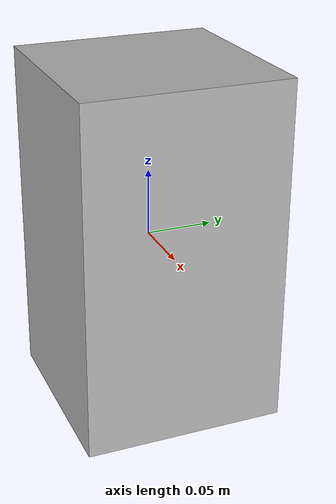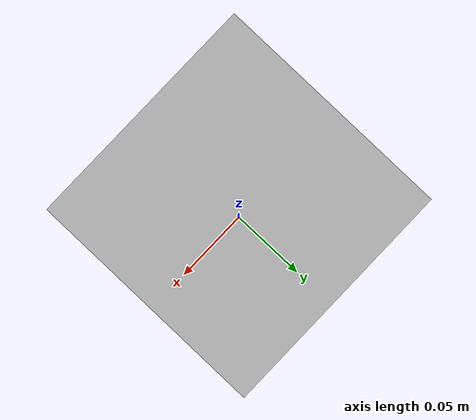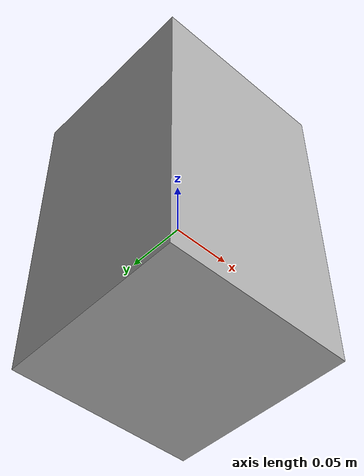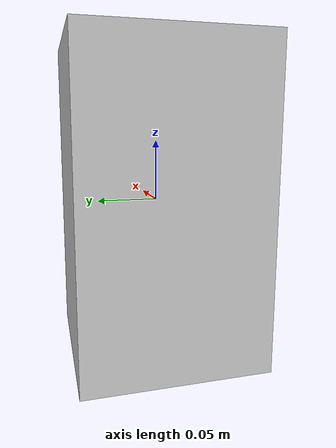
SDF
<?xml version="1.0"?>
<sdf version="1.7">
  <model name="gripper_payload_box">
    <link name="gripper_payload_box_link">
      <visual name="visual">
        <pose>0 0 0 0 0 0</pose>
        <geometry>
          <box>
            <size>.15 .15 .26</size>
          </box>
        </geometry>
        <material>
          <diffuse>0.7 0.7 0.7 1.0</diffuse>
        </material>
      </visual>
      <collision name="collision">
        <pose>0 0 0 0 0 0</pose>
        <geometry>
          <box>
            <size>.1 .1 .26</size>
          </box>
        </geometry>
      </collision>
    </link>
  </model>
</sdf>
